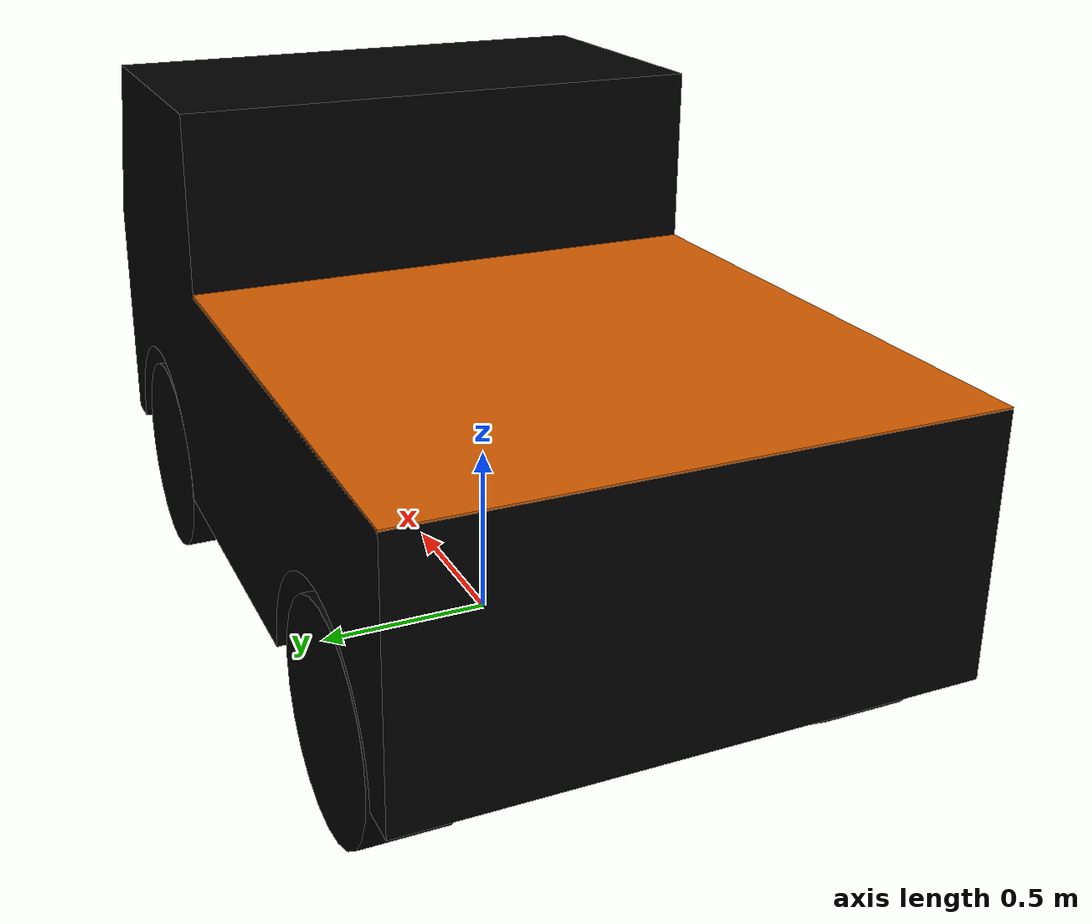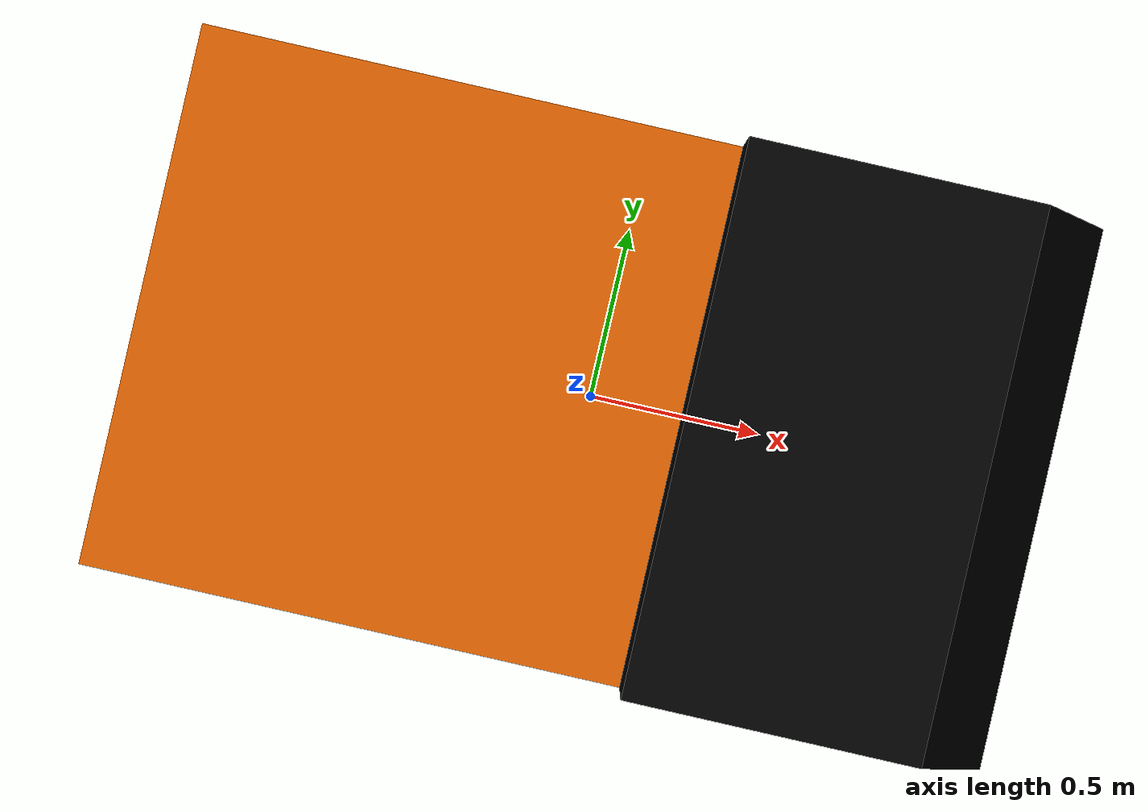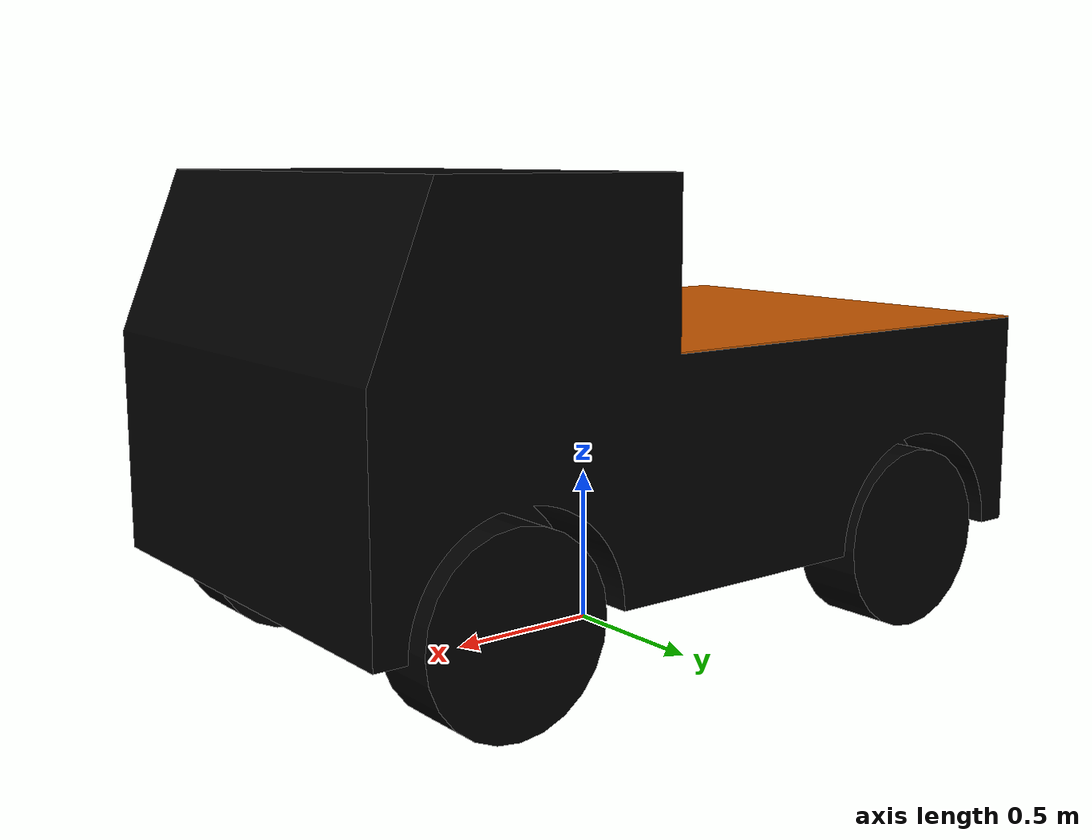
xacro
<?xml version="1.0"?>

<robot name="truck" xmlns:xacro="http://ros.org/wiki/xacro">
  <xacro:property name="pi" value="3.1415926535897931" />

  <!-- body -->
  <link name="base_link">
    <inertial>
      <mass value="700" /> <!-- http://trucktorack.blog.fc2.com/blog-entry-252.html -->
      <origin xyz="0 0 0.595" rpy="0 0 0" />
      <inertia ixx="200.0" ixy="0.0" ixz="0.0" iyy="400.0" iyz="0.0" izz="500.0" />
    </inertial>

    <visual>
      <origin xyz="0 0 0.595" rpy="0 0 0" />
      <geometry>
        <mesh filename="package://jsk_mbzirc_common/gazebo_model/models/truck/meshes/truck.dae" scale=".001 .001 .001"/>
      </geometry>
      <material name="color"> <!-- blue -->
        <color rgba="0 0 0 1"/>
      </material>
    </visual>

    <collision>
      <origin xyz="0 0 0.595" rpy="0 0 0" />
      <geometry>
        <mesh filename="package://jsk_mbzirc_common/gazebo_model/models/truck/meshes/truck.dae" scale=".001 .001 .001"/>
      </geometry>
    </collision>
  </link>

  <!-- tire -->
  <joint name="body_to_front_left_tire" type="fixed">
    <parent link="base_link"/>
    <child link="front_left_tire"/>
    <origin rpy="${pi/2} 0 0" xyz="0.8 0.625 0.295"/>
  </joint>

  <link name="front_left_tire">
    <inertial>
      <mass value="20" />
      <origin xyz="0 0 0" rpy="0 0 0" />
      <inertia ixx="0.78" ixy="0.0" ixz="0.0" iyy="0.78" iyz="0.0" izz="0.87" />
    </inertial>

    <visual>
      <origin xyz="0 0 0" rpy="0 0 0" />
      <geometry>
        <cylinder radius=".295" length=".23"/>
      </geometry>
      <material name="color">
        <color rgba="0 0 0  1"/>
      </material>
    </visual>

    <collision>
      <origin xyz="0 0 0" rpy="0 0 0" />
      <geometry>
        <cylinder radius=".295" length=".23"/>
      </geometry>
    </collision>
  </link>

  <joint name="body_to_front_right_tire" type="fixed">
    <parent link="base_link"/>
    <child link="front_right_tire"/>
    <origin rpy="${pi/2} 0 0" xyz="0.8 -0.625 0.295"/>
  </joint>

  <link name="front_right_tire">
    <inertial>
      <mass value="20" />
      <origin xyz="0 0 0" rpy="0 0 0" />
      <inertia ixx="0.78" ixy="0.0" ixz="0.0" iyy="0.78" iyz="0.0" izz="0.87" />
    </inertial>

    <visual>
      <origin xyz="0 0 0" rpy="0 0 0" />
      <geometry>
        <cylinder radius=".295" length=".23"/>
      </geometry>
      <material name="color">
        <color rgba="0 0 0 1"/>
      </material>
    </visual>

    <collision>
      <origin xyz="0 0 0" rpy="0 0 0" />
      <geometry>
        <cylinder radius=".295" length=".23"/>
      </geometry>
    </collision>
  </link>

  <joint name="body_to_rear_left_tire" type="fixed">
    <parent link="base_link"/>
    <child link="rear_left_tire"/>
    <origin rpy="${pi/2} 0 0" xyz="-0.8 0.625 0.295"/>
  </joint>

  <link name="rear_left_tire">
    <inertial>
      <mass value="20" />
      <origin xyz="0 0 0" rpy="0 0 0" />
      <inertia ixx="0.78" ixy="0.0" ixz="0.0" iyy="0.78" iyz="0.0" izz="0.87" />
    </inertial>

    <visual>
      <origin xyz="0 0 0" rpy="0 0 0" />
      <geometry>
        <cylinder radius=".295" length=".23"/>
      </geometry>
      <material name="color">
        <color rgba="0 0 0 1"/>
      </material>
    </visual>

    <collision>
      <origin xyz="0 0 0" rpy="0 0 0" />
      <geometry>
        <cylinder radius=".295" length=".23"/>
      </geometry>
    </collision>
  </link>

  <joint name="body_to_rear_right_tire" type="fixed">
    <parent link="base_link"/>
    <child link="rear_right_tire"/>
    <origin rpy="${pi/2} 0 0" xyz="-0.8 -0.625 0.295"/>
  </joint>

  <link name="rear_right_tire">
    <inertial>
      <mass value="20" />
      <origin xyz="0 0 0" rpy="0 0 0" />
      <inertia ixx="0.78" ixy="0.0" ixz="0.0" iyy="0.78" iyz="0.0" izz="0.87" />
    </inertial>

    <visual>
      <origin xyz="0 0 0" rpy="0 0 0" />
      <geometry>
        <cylinder radius=".295" length=".23"/>
      </geometry>
      <material name="color">
        <color rgba="0 0 0 1"/>
      </material>
    </visual>

    <collision>
      <origin xyz="0 0 0" rpy="0 0 0" />
      <geometry>
        <cylinder radius=".295" length=".23"/>
      </geometry>
    </collision>
  </link>

  <joint name="body_to_heliport" type="fixed">
    <parent link="base_link"/>
    <child link="heliport"/>
    <origin rpy="0 0 0" xyz="-0.5 0 0.995"/>
  </joint>

  <link name="heliport">
    <inertial>
      <mass value="5" />
      <origin xyz="0 0 0" rpy="0 0 0" />
      <inertia ixx="1.0" ixy="0.0" ixz="0.0" iyy="1.0" iyz="0.0" izz="2.0" />
    </inertial>

    <visual>
      <origin xyz="0 0 0" rpy="0 0 0" />
      <geometry>
        <mesh filename="package://jsk_mbzirc_common/gazebo_model/models/truck/meshes/heliport.dae"/>
      </geometry>
    </visual>

    <collision>
      <origin xyz="0 0 0" rpy="0 0 0" />
      <geometry>
        <mesh filename="package://jsk_mbzirc_common/gazebo_model/models/truck/meshes/heliport.dae"/>
      </geometry>
    </collision>
  </link>

  <!-- gazebo -->
  <gazebo>
    <!-- p3d plugin to publish odom -->
    <plugin name="ground_truth" filename="libgazebo_ros_p3d.so">
      <tf_prefix>truck/ground_truth</tf_prefix>
      <frameName>world</frameName>
      <bodyName>base_link</bodyName>
      <topicName>odom</topicName>
      <updateRate>50.0</updateRate>
    </plugin>
    <!-- truck trajectory + task1 rule -->
    <plugin name="mbzirc_gazebo_truck_plugin" filename="libmbzirc_gazebo_truck_plugin.so">
      <bodyName>base_link</bodyName>
      </plugin>
  </gazebo>

  <!-- physical property of each link in gazebo -->
  <gazebo reference="base_link">
    <mu1>100</mu1>
    <mu2>50</mu2>
    <kp>1e+13</kp>
    <kd>1</kd>
    <gravity>0</gravity>
  </gazebo>

  <gazebo reference="heliport">
    <mu1>100</mu1>
    <mu2>50</mu2>
    <kp>1e+13</kp>
    <kd>1</kd>
    <gravity>0</gravity>
  </gazebo>

  <gazebo reference="front_left_tire">
    <mu1>100</mu1>
    <mu2>50</mu2>
    <kp>1e+13</kp>
    <kd>1</kd>
    <material>Gazebo/Black</material>
    <gravity>0</gravity>
  </gazebo>

  <gazebo reference="front_right_tire">
    <mu1>100</mu1>
    <mu2>50</mu2>
    <kp>1e+13</kp>
    <kd>1</kd>
    <material>Gazebo/Black</material>
    <gravity>0</gravity>
  </gazebo>

  <gazebo reference="rear_left_tire">
    <mu1>100</mu1>
    <mu2>50</mu2>
    <kp>1e+13</kp>
    <kd>1</kd>
    <material>Gazebo/Black</material>
    <gravity>0</gravity>
  </gazebo>

  <gazebo reference="rear_right_tire">
    <mu1>100</mu1>
    <mu2>50</mu2>
    <kp>1e+13</kp>
    <kd>1</kd>
    <material>Gazebo/Black</material>
    <gravity>0</gravity>
  </gazebo>

</robot>
